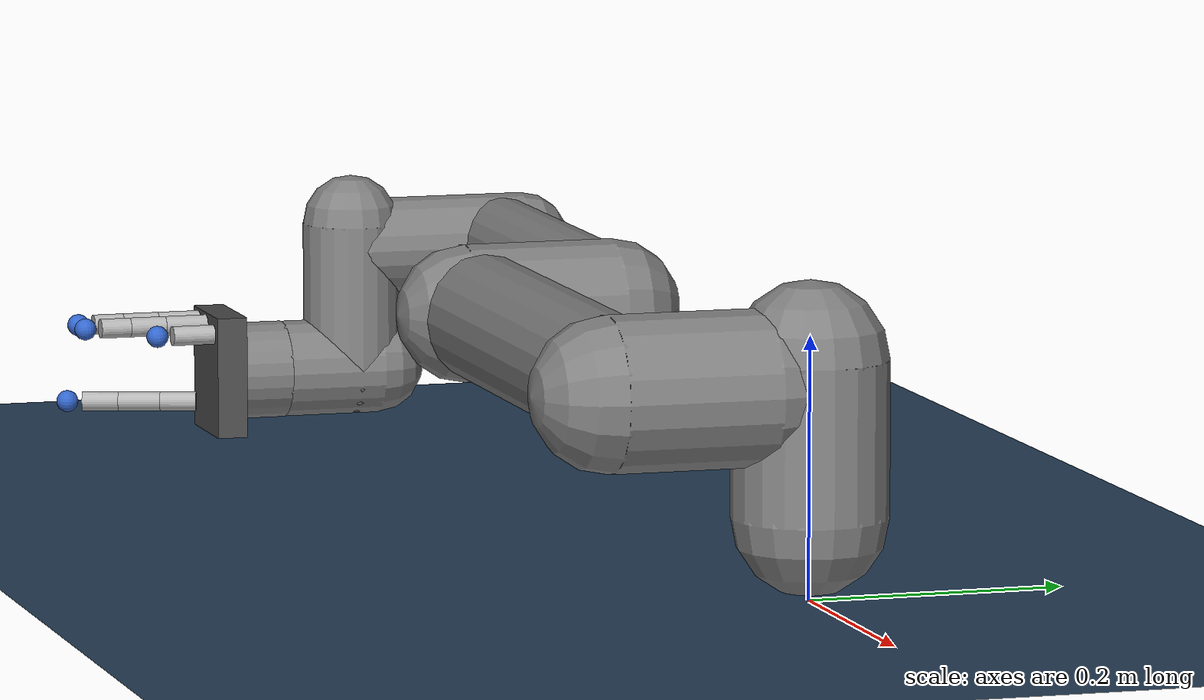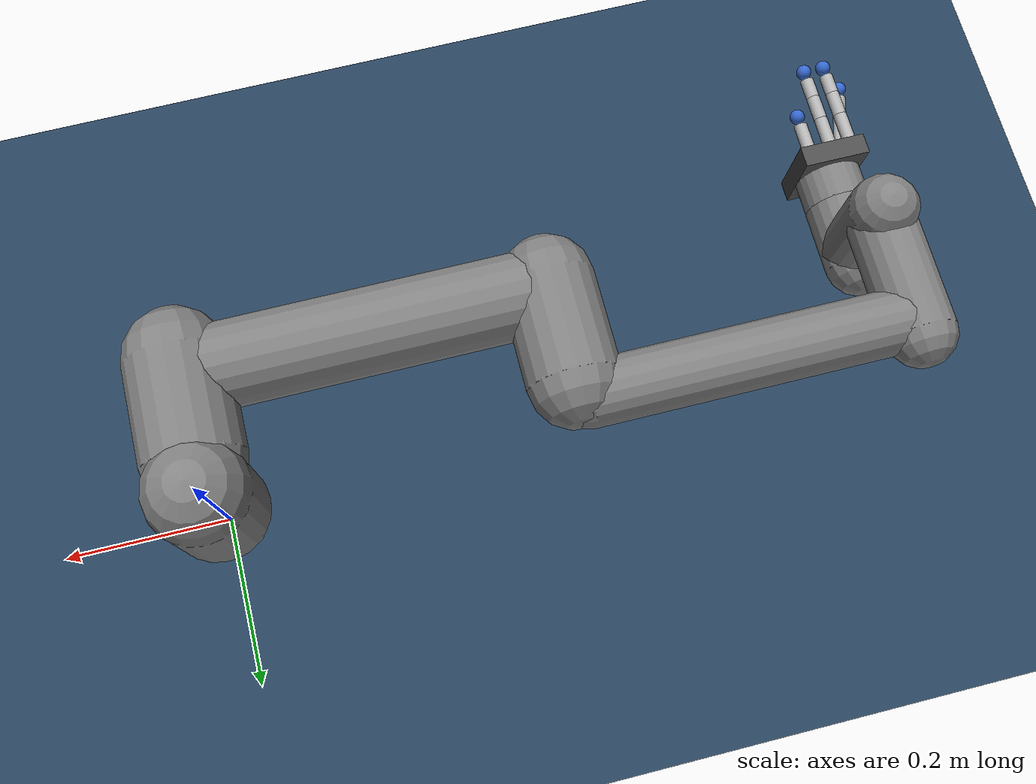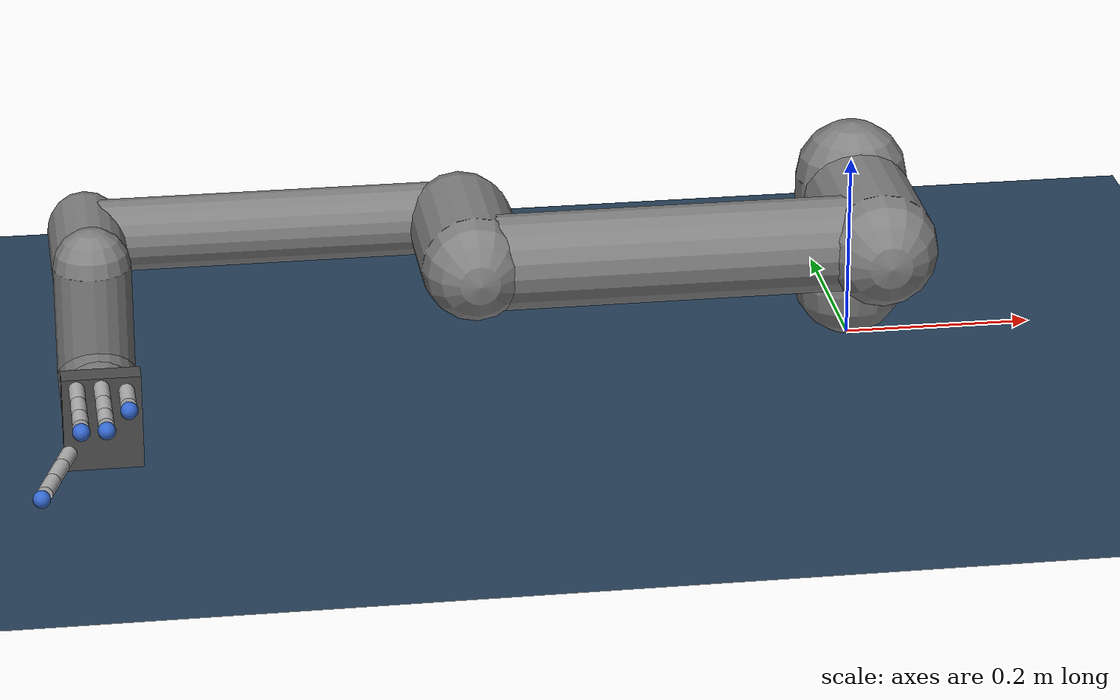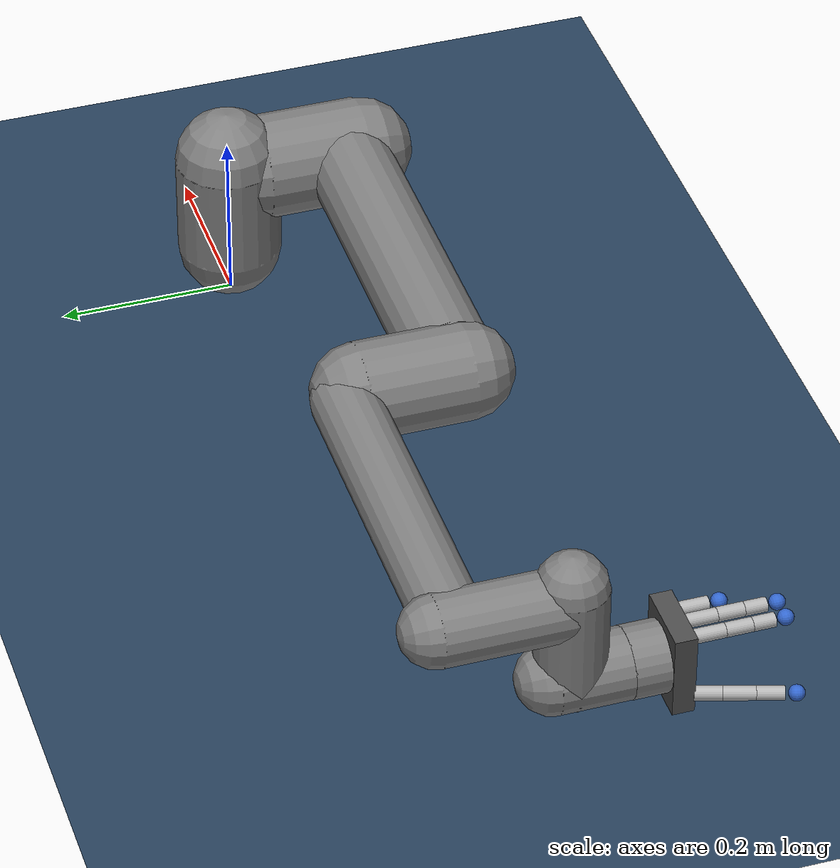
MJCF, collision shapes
<mujoco model="ur5e scene">
  <include file="ur5e_with_hand.xml"/>

  <statistic center="0.3 0 0.4" extent="0.8"/>

  <visual>
    <headlight diffuse="0.6 0.6 0.6" ambient="0.1 0.1 0.1" specular="0 0 0"/>
    <rgba haze="0.15 0.25 0.35 1"/>
    <global azimuth="120" elevation="-20"/>
  </visual>

  <asset>
    <texture type="skybox" builtin="gradient" rgb1="0.3 0.5 0.7" rgb2="0 0 0" width="512" height="3072"/>
    <texture type="2d" name="groundplane" builtin="checker" mark="edge" rgb1="0.2 0.3 0.4" rgb2="0.1 0.2 0.3"
      markrgb="0.8 0.8 0.8" width="300" height="300"/>
    <material name="groundplane" texture="groundplane" texuniform="true" texrepeat="5 5" reflectance="0.2"/>
  </asset>

  <worldbody>
    <light pos="0 0 1.5" dir="0 0 -1" directional="true"/>
    <geom name="floor" size="0 0 0.05" type="plane" material="groundplane"/>
  </worldbody>
</mujoco>

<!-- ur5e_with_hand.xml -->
<mujoco model="ur5e_with_hand">
  <compiler angle="radian" meshdir="../meshes/assets" autolimits="true"/>

  <option integrator="implicitfast"/>

  <default>
    <default class="ur5e">
      <material specular="0.5" shininess="0.25"/>
      <joint axis="0 1 0" range="-6.28319 6.28319" armature="0.1"/>
      <general gaintype="fixed" biastype="affine" ctrlrange="-6.2831 6.2831" gainprm="2000" biasprm="0 -2000 -400"
        forcerange="-150 150"/>
      <default class="size3">
        <default class="size3_limited">
          <joint range="-3.1415 3.1415"/>
          <general ctrlrange="-3.1415 3.1415"/>
        </default>
      </default>
      <default class="size1">
        <general gainprm="500" biasprm="0 -500 -100" forcerange="-28 28"/>
      </default>
      <default class="hand_size1">
        <general gainprm="500" biasprm="0 -500 -100" forcerange="-5 5"/>
      </default>
      <default class="visual">
        <geom type="mesh" contype="0" conaffinity="0" group="2"/>
      </default>
      <default class="collision">
        <geom type="capsule" group="3"/>
        <default class="eef_collision">
          <geom type="cylinder"/>
        </default>
      </default>
      <site size="0.001" rgba="0.5 0.5 0.5 0.3" group="4"/>
    </default>
  </default>

  <asset>
    <material class="ur5e" name="black" rgba="0.033 0.033 0.033 1"/>
    <material class="ur5e" name="jointgray" rgba="0.278 0.278 0.278 1"/>
    <material class="ur5e" name="linkgray" rgba="0.82 0.82 0.82 1"/>
    <material class="ur5e" name="urblue" rgba="0.49 0.678 0.8 1"/>

    <mesh file="base_0.obj"/>
    <mesh file="base_1.obj"/>
    <mesh file="shoulder_0.obj"/>
    <mesh file="shoulder_1.obj"/>
    <mesh file="shoulder_2.obj"/>
    <mesh file="upperarm_0.obj"/>
    <mesh file="upperarm_1.obj"/>
    <mesh file="upperarm_2.obj"/>
    <mesh file="upperarm_3.obj"/>
    <mesh file="forearm_0.obj"/>
    <mesh file="forearm_1.obj"/>
    <mesh file="forearm_2.obj"/>
    <mesh file="forearm_3.obj"/>
    <mesh file="wrist1_0.obj"/>
    <mesh file="wrist1_1.obj"/>
    <mesh file="wrist1_2.obj"/>
    <mesh file="wrist2_0.obj"/>
    <mesh file="wrist2_1.obj"/>
    <mesh file="wrist2_2.obj"/>
    <mesh file="wrist3.obj"/>
  </asset>

  <worldbody>
    <light name="spotlight" mode="targetbodycom" target="wrist_2_link" pos="0 -1 2"/>
    <body name="base" quat="0 0 0 -1" childclass="ur5e">
      <inertial mass="4.0" pos="0 0 0" diaginertia="0.00443333156 0.00443333156 0.0072"/>
      <geom mesh="base_0" material="black" class="visual"/>
      <geom mesh="base_1" material="jointgray" class="visual"/>
      <body name="shoulder_link" pos="0 0 0.163">
        <inertial mass="3.7" pos="0 0 0" diaginertia="0.0102675 0.0102675 0.00666"/>
        <joint name="shoulder_pan_joint" class="size3" axis="0 0 1"/>
        <geom mesh="shoulder_0" material="urblue" class="visual"/>
        <geom mesh="shoulder_1" material="black" class="visual"/>
        <geom mesh="shoulder_2" material="jointgray" class="visual"/>
        <geom class="collision" size="0.06 0.06" pos="0 0 -0.04"/>
        <body name="upper_arm_link" pos="0 0.138 0" quat="1 0 1 0">
          <inertial mass="8.393" pos="0 0 0.2125" diaginertia="0.133886 0.133886 0.0151074"/>
          <joint name="shoulder_lift_joint" class="size3"/>
          <geom mesh="upperarm_0" material="linkgray" class="visual"/>
          <geom mesh="upperarm_1" material="black" class="visual"/>
          <geom mesh="upperarm_2" material="jointgray" class="visual"/>
          <geom mesh="upperarm_3" material="urblue" class="visual"/>
          <geom class="collision" pos="0 -0.04 0" quat="1 1 0 0" size="0.06 0.06"/>
          <geom class="collision" size="0.05 0.2" pos="0 0 0.2"/>
          <body name="forearm_link" pos="0 -0.131 0.425">
            <inertial mass="2.275" pos="0 0 0.196" diaginertia="0.0311796 0.0311796 0.004095"/>
            <joint name="elbow_joint" class="size3_limited"/>
            <geom mesh="forearm_0" material="urblue" class="visual"/>
            <geom mesh="forearm_1" material="linkgray" class="visual"/>
            <geom mesh="forearm_2" material="black" class="visual"/>
            <geom mesh="forearm_3" material="jointgray" class="visual"/>
            <geom class="collision" pos="0 0.08 0" quat="1 1 0 0" size="0.055 0.06"/>
            <geom class="collision" size="0.038 0.19" pos="0 0 0.2"/>
            <body name="wrist_1_link" pos="0 0 0.392" quat="1 0 1 0">
              <inertial mass="1.219" pos="0 0.127 0" diaginertia="0.0025599 0.0025599 0.0021942"/>
              <joint name="wrist_1_joint" class="size1"/>
              <geom mesh="wrist1_0" material="black" class="visual"/>
              <geom mesh="wrist1_1" material="urblue" class="visual"/>
              <geom mesh="wrist1_2" material="jointgray" class="visual"/>
              <geom class="collision" pos="0 0.05 0" quat="1 1 0 0" size="0.04 0.07"/>
              <body name="wrist_2_link" pos="0 0.127 0">
                <inertial mass="1.219" pos="0 0 0.1" diaginertia="0.0025599 0.0025599 0.0021942"/>
                <joint name="wrist_2_joint" axis="0 0 1" class="size1"/>
                <geom mesh="wrist2_0" material="black" class="visual"/>
                <geom mesh="wrist2_1" material="urblue" class="visual"/>
                <geom mesh="wrist2_2" material="jointgray" class="visual"/>
                <geom class="collision" size="0.04 0.06" pos="0 0 0.04"/>
                <geom class="collision" pos="0 0.02 0.1" quat="1 1 0 0" size="0.04 0.04"/>
                <body name="wrist_3_link" pos="0 0 0.1">
                  <inertial mass="0.1889" pos="0 0.0771683 0" quat="1 0 0 1"
                    diaginertia="0.000132134 9.90863e-05 9.90863e-05"/>
                  <joint name="wrist_3_joint" class="size1"/>
                  <geom material="linkgray" mesh="wrist3" class="visual"/>
                  <geom class="eef_collision" pos="0 0.08 0" quat="1 1 0 0" size="0.04 0.02"/>
                  <site name="attachment_site" pos="0 0.1 0" quat="-1 1 0 0"/>
                  <!-- Hand attached at attachment_site -->
                  <body name="hand_base" pos="0 0.1 0" quat="-1 1 0 0">
                    <geom size="0.04 0.05 0.0125" pos="0 0 0.0125" type="box" rgba="0.3 0.3 0.3 1" contype="0" conaffinity="0"/>
                    <body name="thumb_cmc_aa_link" pos="-0.035 -0.03 0.025" quat="0.988771 0 -0.149438 0">
                      <inertial pos="0 0 0.015" mass="0.02" diaginertia="1e-06 1e-06 1e-07"/>
                      <joint name="thumb_cmc_aa" pos="0 0 0" axis="0 1 0" range="-1.5708 1.5708" damping="0.01" frictionloss="0.01"/>
                      <geom size="0.008 0.015" pos="0 0 0.015" type="cylinder" rgba="0.7 0.7 0.7 1" contype="0" conaffinity="0"/>
                      <body name="thumb_cmc_fe_link" pos="0 0 0.03">
                        <inertial pos="0 0 0.0175" mass="0.02" diaginertia="1e-06 1e-06 1e-07"/>
                        <joint name="thumb_cmc_fe" pos="0 0 0" axis="1 0 0" range="-1.5708 1.5708" damping="0.01" frictionloss="0.01"/>
                        <geom size="0.008 0.0175" pos="0 0 0.0175" type="cylinder" rgba="0.7 0.7 0.7 1" contype="0" conaffinity="0"/>
                        <body name="thumb_mcp_fe_link" pos="0 0 0.035">
                          <inertial pos="0 0 0.0241667" mass="0.03" diaginertia="6.14167e-06 6.14167e-06 2e-07"/>
                          <joint name="thumb_mcp_fe" pos="0 0 0" axis="1 0 0" range="-1.5708 1.5708" damping="0.01" frictionloss="0.01"/>
                          <geom size="0.008 0.015" pos="0 0 0.015" type="cylinder" rgba="0.7 0.7 0.7 1" contype="0" conaffinity="0"/>
                          <geom size="0.009" pos="0 0 0.0425" rgba="0.2 0.4 0.8 1" contype="0" conaffinity="0"/>
                        </body>
                      </body>
                    </body>
                    <body name="index_mcp_aa_link" pos="-0.025 0.04 0.025">
                      <inertial pos="0 0 0.0175" mass="0.02" diaginertia="1e-06 1e-06 1e-07"/>
                      <joint name="index_mcp_aa" pos="0 0 0" axis="1 0 0" range="-1.5708 1.5708" damping="0.01" frictionloss="0.01"/>
                      <geom size="0.008 0.0175" pos="0 0 0.0175" type="cylinder" rgba="0.7 0.7 0.7 1" contype="0" conaffinity="0"/>
                      <body name="index_mcp_fe_link" pos="0 0 0.035">
                        <inertial pos="0 0 0.015" mass="0.02" diaginertia="1e-06 1e-06 1e-07"/>
                        <joint name="index_mcp_fe" pos="0 0 0" axis="1 0 0" range="-1.5708 1.5708" damping="0.01" frictionloss="0.01"/>
                        <geom size="0.008 0.015" pos="0 0 0.015" type="cylinder" rgba="0.7 0.7 0.7 1" contype="0" conaffinity="0"/>
                        <body name="index_dip_fe_link" pos="0 0 0.03">
                          <inertial pos="0 0 0.0208333" mass="0.03" diaginertia="5.26667e-06 5.26667e-06 2e-07"/>
                          <joint name="index_dip_fe" pos="0 0 0" axis="1 0 0" range="-1.5708 1.5708" damping="0.01" frictionloss="0.01"/>
                          <geom size="0.008 0.0125" pos="0 0 0.0125" type="cylinder" rgba="0.7 0.7 0.7 1" contype="0" conaffinity="0"/>
                          <geom size="0.009" pos="0 0 0.0375" rgba="0.2 0.4 0.8 1" contype="0" conaffinity="0"/>
                        </body>
                      </body>
                    </body>
                    <body name="middle_mcp_aa_link" pos="0 0.04 0.025">
                      <inertial pos="0 0 0.0175" mass="0.02" diaginertia="1e-06 1e-06 1e-07"/>
                      <joint name="middle_mcp_aa" pos="0 0 0" axis="1 0 0" range="-1.5708 1.5708" damping="0.01" frictionloss="0.01"/>
                      <geom size="0.008 0.0175" pos="0 0 0.0175" type="cylinder" rgba="0.7 0.7 0.7 1" contype="0" conaffinity="0"/>
                      <body name="middle_mcp_fe_link" pos="0 0 0.035">
                        <inertial pos="0 0 0.015" mass="0.02" diaginertia="1e-06 1e-06 1e-07"/>
                        <joint name="middle_mcp_fe" pos="0 0 0" axis="1 0 0" range="-1.5708 1.5708" damping="0.01" frictionloss="0.01"/>
                        <geom size="0.008 0.015" pos="0 0 0.015" type="cylinder" rgba="0.7 0.7 0.7 1" contype="0" conaffinity="0"/>
                        <body name="middle_dip_fe_link" pos="0 0 0.03">
                          <inertial pos="0 0 0.0208333" mass="0.03" diaginertia="5.26667e-06 5.26667e-06 2e-07"/>
                          <joint name="middle_dip_fe" pos="0 0 0" axis="1 0 0" range="-1.5708 1.5708" damping="0.01" frictionloss="0.01"/>
                          <geom size="0.008 0.0125" pos="0 0 0.0125" type="cylinder" rgba="0.7 0.7 0.7 1" contype="0" conaffinity="0"/>
                          <geom size="0.009" pos="0 0 0.0375" rgba="0.2 0.4 0.8 1" contype="0" conaffinity="0"/>
                        </body>
                      </body>
                    </body>
                    <body name="ring_mcp_fe_link" pos="0.025 0.035 0.025">
                      <inertial pos="0 0 0.0275" mass="0.03" diaginertia="7.1e-06 7.1e-06 2e-07"/>
                      <joint name="ring_mcp_fe" pos="0 0 0" axis="1 0 0" range="-1.5708 1.5708" damping="0.01" frictionloss="0.01"/>
                      <geom size="0.008 0.0175" pos="0 0 0.0175" type="cylinder" rgba="0.7 0.7 0.7 1" contype="0" conaffinity="0"/>
                      <geom size="0.009" pos="0 0 0.0475" rgba="0.2 0.4 0.8 1" contype="0" conaffinity="0"/>
                    </body>
                  </body>
                </body>
              </body>
            </body>
          </body>
        </body>
      </body>
    </body>
  </worldbody>

  <actuator>
    <general class="size3" name="shoulder_pan" joint="shoulder_pan_joint"/>
    <general class="size3" name="shoulder_lift" joint="shoulder_lift_joint"/>
    <general class="size3_limited" name="elbow" joint="elbow_joint"/>
    <general class="size1" name="wrist_1" joint="wrist_1_joint"/>
    <general class="size1" name="wrist_2" joint="wrist_2_joint"/>
    <general class="size1" name="wrist_3" joint="wrist_3_joint"/>
    <general class="hand_size1" name="thumb_cmc_aa"   joint="thumb_cmc_aa"/>
    <general class="hand_size1" name="thumb_cmc_fe"   joint="thumb_cmc_fe"/>
    <general class="hand_size1" name="thumb_mcp_fe"   joint="thumb_mcp_fe"/>
    <general class="hand_size1" name="index_mcp_aa"   joint="index_mcp_aa"/>
    <general class="hand_size1" name="index_mcp_fe"   joint="index_mcp_fe"/>
    <general class="hand_size1" name="index_dip_fe"   joint="index_dip_fe"/>
    <general class="hand_size1" name="middle_mcp_aa"  joint="middle_mcp_aa"/>
    <general class="hand_size1" name="middle_mcp_fe"  joint="middle_mcp_fe"/>
    <general class="hand_size1" name="middle_dip_fe"  joint="middle_dip_fe"/>
    <general class="hand_size1" name="ring_mcp_fe"    joint="ring_mcp_fe"/>
  </actuator>

  <keyframe>
    <key name="home" qpos="-1.5708 -1.5708 1.5708 -1.5708 -1.5708 0 0 0 0 0 0 0 0 0 0 0"
                     ctrl="-1.5708 -1.5708 1.5708 -1.5708 -1.5708 0 0 0 0 0 0 0 0 0 0 0"/>
  </keyframe>
</mujoco>
